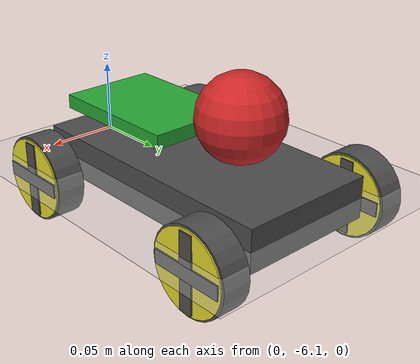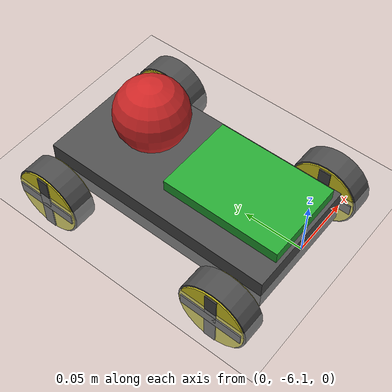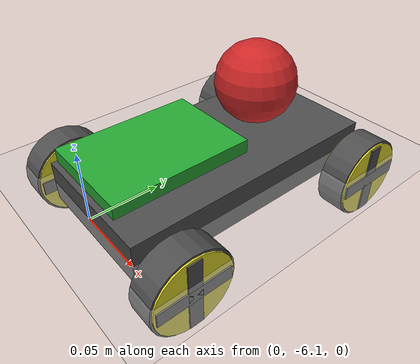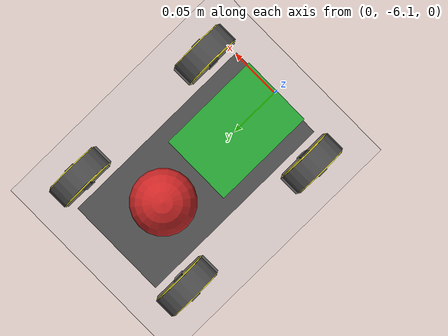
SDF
<sdf version="1.7">
 <world name="trial_1_world">
  <scene><sky><clouds><speed>12</speed></clouds></sky></scene>
  <model name="rover">
   <pose>0 -6 0 0 0 1.57</pose>
   <link name="chassis">
    <inertial><mass>0.2</mass><inertia><ixx>0.01</ixx><iyy>0.01</iyy><izz>0.01</izz></inertia></inertial>
    <visual name="chassis_visual">
     <geometry><box><size>0.2 0.1 0.03</size></box></geometry>
     <material>
      <script><uri>file://media/materials/scripts/gazebo.material</uri><name>Gazebo/DarkGrey</name></script>
     </material>
    </visual>
    <collision name="chassis_collision"><geometry><box><size>0.2 0.1 0.03</size></box></geometry></collision>
    <visual name="computer_visual">
     <pose>-0.05 0 0.03 0 0 0</pose>
     <geometry><box><size>0.1 0.07 0.01</size></box></geometry>
     <material>
      <script><uri>file://media/materials/scripts/gazebo.material</uri><name>Gazebo/Green</name></script>
     </material>
    </visual>
    <collision name="computer_collision">
     <pose>-0.05 0 0.03 0 0 0</pose>
     <geometry><box><size>0.1 0.07 0.01</size></box></geometry>
    </collision>
   </link>
   <link name="front_left">
    <pose>0.08 0.07 -0.01 -1.5707 0 0</pose>
    <inertial><mass>0.005</mass><inertia><ixx>0.0001</ixx><iyy>0.0001</iyy><izz>0.0001</izz></inertia></inertial>
    <collision name="collision">
     <geometry><cylinder><radius>0.03</radius><length>0.02</length></cylinder></geometry>
    </collision>
    <visual name="tire">
     <geometry><cylinder><radius>0.03</radius><length>0.02</length></cylinder></geometry>
     <material>
      <script><uri>file://media/materials/scripts/gazebo.material</uri><name>Gazebo/DarkGrey</name></script>
     </material>
    </visual>
    <visual name="wheel">
     <geometry><cylinder><radius>0.028499999999999998</radius><length>0.022</length></cylinder></geometry>
     <material>
      <script><uri>file://media/materials/scripts/gazebo.material</uri><name>Gazebo/Yellow</name></script>
     </material>
    </visual>
    <visual name="wheel_line">
     <geometry><box><size>0.053 0.01 0.024</size></box></geometry>
     <material>
      <script><uri>file://media/materials/scripts/gazebo.material</uri><name>Gazebo/DarkGrey</name></script>
     </material>
    </visual>
    <visual name="wheel_line2">
     <geometry><box><size>0.01 0.053 0.024</size></box></geometry>
     <material>
      <script><uri>file://media/materials/scripts/gazebo.material</uri><name>Gazebo/DarkGrey</name></script>
     </material>
    </visual>
   </link>
   <joint type="revolute" name="front_left_joint">
    <child>front_left</child>
    <parent>chassis</parent>
    <axis><xyz>0 0 1</xyz><dynamics><friction>0.01</friction><damping>0.01</damping></dynamics></axis>
   </joint>
   <link name="front_right">
    <pose>0.08 -0.07 -0.01 -1.5707 0 0</pose>
    <inertial><mass>0.005</mass><inertia><ixx>0.0001</ixx><iyy>0.0001</iyy><izz>0.0001</izz></inertia></inertial>
    <collision name="collision">
     <geometry><cylinder><radius>0.03</radius><length>0.02</length></cylinder></geometry>
    </collision>
    <visual name="tire">
     <geometry><cylinder><radius>0.03</radius><length>0.02</length></cylinder></geometry>
     <material>
      <script><uri>file://media/materials/scripts/gazebo.material</uri><name>Gazebo/DarkGrey</name></script>
     </material>
    </visual>
    <visual name="wheel">
     <geometry><cylinder><radius>0.028499999999999998</radius><length>0.022</length></cylinder></geometry>
     <material>
      <script><uri>file://media/materials/scripts/gazebo.material</uri><name>Gazebo/Yellow</name></script>
     </material>
    </visual>
    <visual name="wheel_line">
     <geometry><box><size>0.053 0.01 0.024</size></box></geometry>
     <material>
      <script><uri>file://media/materials/scripts/gazebo.material</uri><name>Gazebo/DarkGrey</name></script>
     </material>
    </visual>
    <visual name="wheel_line2">
     <geometry><box><size>0.01 0.053 0.024</size></box></geometry>
     <material>
      <script><uri>file://media/materials/scripts/gazebo.material</uri><name>Gazebo/DarkGrey</name></script>
     </material>
    </visual>
   </link>
   <joint type="revolute" name="front_right_joint">
    <child>front_right</child>
    <parent>chassis</parent>
    <axis><xyz>0 0 1</xyz><dynamics><friction>0.01</friction><damping>0.01</damping></dynamics></axis>
   </joint>
   <link name="rear_left">
    <pose>-0.08 0.07 -0.01 -1.5707 0 0</pose>
    <inertial><mass>0.005</mass><inertia><ixx>0.0001</ixx><iyy>0.0001</iyy><izz>0.0001</izz></inertia></inertial>
    <collision name="collision">
     <geometry><cylinder><radius>0.03</radius><length>0.02</length></cylinder></geometry>
    </collision>
    <visual name="tire">
     <geometry><cylinder><radius>0.03</radius><length>0.02</length></cylinder></geometry>
     <material>
      <script><uri>file://media/materials/scripts/gazebo.material</uri><name>Gazebo/DarkGrey</name></script>
     </material>
    </visual>
    <visual name="wheel">
     <geometry><cylinder><radius>0.028499999999999998</radius><length>0.022</length></cylinder></geometry>
     <material>
      <script><uri>file://media/materials/scripts/gazebo.material</uri><name>Gazebo/Yellow</name></script>
     </material>
    </visual>
    <visual name="wheel_line">
     <geometry><box><size>0.053 0.01 0.024</size></box></geometry>
     <material>
      <script><uri>file://media/materials/scripts/gazebo.material</uri><name>Gazebo/DarkGrey</name></script>
     </material>
    </visual>
    <visual name="wheel_line2">
     <geometry><box><size>0.01 0.053 0.024</size></box></geometry>
     <material>
      <script><uri>file://media/materials/scripts/gazebo.material</uri><name>Gazebo/DarkGrey</name></script>
     </material>
    </visual>
   </link>
   <joint type="revolute" name="rear_left_joint">
    <child>rear_left</child>
    <parent>chassis</parent>
    <axis><xyz>0 0 1</xyz><dynamics><friction>0.01</friction><damping>0.01</damping></dynamics></axis>
   </joint>
   <link name="rear_right">
    <pose>-0.08 -0.07 -0.01 -1.5707 0 0</pose>
    <inertial><mass>0.005</mass><inertia><ixx>0.0001</ixx><iyy>0.0001</iyy><izz>0.0001</izz></inertia></inertial>
    <collision name="collision">
     <geometry><cylinder><radius>0.03</radius><length>0.02</length></cylinder></geometry>
    </collision>
    <visual name="tire">
     <geometry><cylinder><radius>0.03</radius><length>0.02</length></cylinder></geometry>
     <material>
      <script><uri>file://media/materials/scripts/gazebo.material</uri><name>Gazebo/DarkGrey</name></script>
     </material>
    </visual>
    <visual name="wheel">
     <geometry><cylinder><radius>0.028499999999999998</radius><length>0.022</length></cylinder></geometry>
     <material>
      <script><uri>file://media/materials/scripts/gazebo.material</uri><name>Gazebo/Yellow</name></script>
     </material>
    </visual>
    <visual name="wheel_line">
     <geometry><box><size>0.053 0.01 0.024</size></box></geometry>
     <material>
      <script><uri>file://media/materials/scripts/gazebo.material</uri><name>Gazebo/DarkGrey</name></script>
     </material>
    </visual>
    <visual name="wheel_line2">
     <geometry><box><size>0.01 0.053 0.024</size></box></geometry>
     <material>
      <script><uri>file://media/materials/scripts/gazebo.material</uri><name>Gazebo/DarkGrey</name></script>
     </material>
    </visual>
   </link>
   <joint type="revolute" name="rear_right_joint">
    <child>rear_right</child>
    <parent>chassis</parent>
    <axis><xyz>0 0 1</xyz><dynamics><friction>0.01</friction><damping>0.01</damping></dynamics></axis>
   </joint>
   <include><uri>model://red_ball</uri></include>
   <joint name="red_ball_joint" type="fixed">
    <pose>-0.04 0 0.02 0 0 0</pose>
    <child>red_ball::link</child>
    <parent>chassis</parent>
   </joint>
   <plugin name="skid_steer_drive_controller" filename="libgazebo_ros_skid_steer_drive.so">
    <robotNamespace>rover</robotNamespace>
    <updateRate>100.0</updateRate>
    <leftFrontJoint>front_left_joint</leftFrontJoint>
    <rightFrontJoint>front_right_joint</rightFrontJoint>
    <leftRearJoint>rear_left_joint</leftRearJoint>
    <rightRearJoint>rear_right_joint</rightRearJoint>
    <wheelSeparation>0.14</wheelSeparation>
    <wheelDiameter>0.06</wheelDiameter>
    <robotBaseFrame>rover_ground_truth</robotBaseFrame>
    <torque>0.3</torque>
    <broadcastTF>true</broadcastTF>
    <commandTopic>cmd_vel</commandTopic>
    <odometryTopic>rover_odom</odometryTopic>
    <odometryFrame>map</odometryFrame>
    <covariance_x>0.0001</covariance_x>
    <covariance_y>0.0001</covariance_y>
    <covariance_yaw>0.0001</covariance_yaw>
   </plugin>
  </model>
  <include><uri>model://sun</uri></include>
  <include><uri>model://hangar_floor</uri></include>
 </world>
</sdf>

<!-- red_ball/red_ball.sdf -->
<sdf version="1.7">
  <model name='red_ball'>
    <link name='link'>
      <pose>0.04 0 0.05 0 0 0</pose>
      <inertial>
        <mass>0.001</mass>
        <inertia>
          <ixx>0.0001</ixx>
          <iyy>0.0001</iyy>
          <izz>0.0001</izz>
        </inertia>
      </inertial>
      <visual name="ball_visual">
        <geometry>
          <sphere>
            <radius>0.03</radius>
          </sphere>
        </geometry>
        <material>
          <script>
            <uri>file://media/materials/scripts/gazebo.material</uri>
            <name>Gazebo/Red</name>
          </script>
        </material>
      </visual>
      <collision name="ball_collision">
        <geometry>
          <sphere>
            <radius>0.03</radius>
          </sphere>
        </geometry>
      </collision>
    </link>
  </model>
</sdf>
<!-- vim: set et fenc=utf-8 ff=unix sts=0 sw=2 ts=2 : -->

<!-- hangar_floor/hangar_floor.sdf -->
<sdf version="1.7">
  <model name="hangar_floor">
    <static>true</static>
    <link name='ground'>
      <pose>0 0 0 0 0 0</pose>
      <static>true</static>
      <visual name='visual'>
        <geometry>
          <plane>
            <size>20 20</size>
          </plane>
        </geometry>
        <material>
          <script>
            <uri>model://hangar_floor/materials/scripts</uri>
            <uri>model://hangar_floor/materials/textures</uri>
            <name>hangar_floor</name>
          </script>
        </material>
      </visual>
      <collision name='collision'>
        <geometry>
          <plane>
            <size>20 20</size>
          </plane>
        </geometry>
      </collision>
    </link>
  </model>
</sdf>
